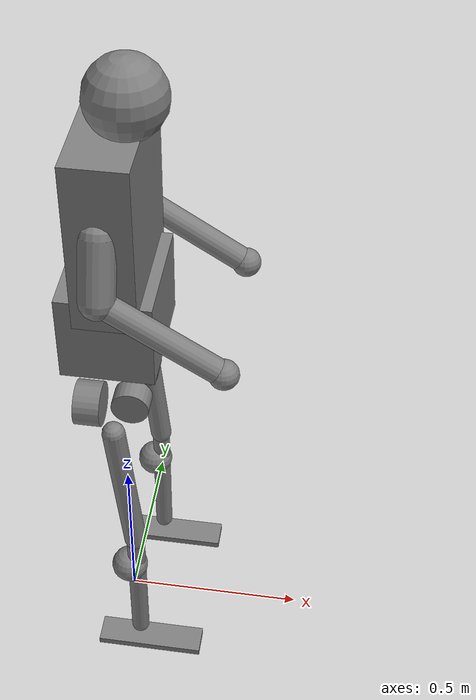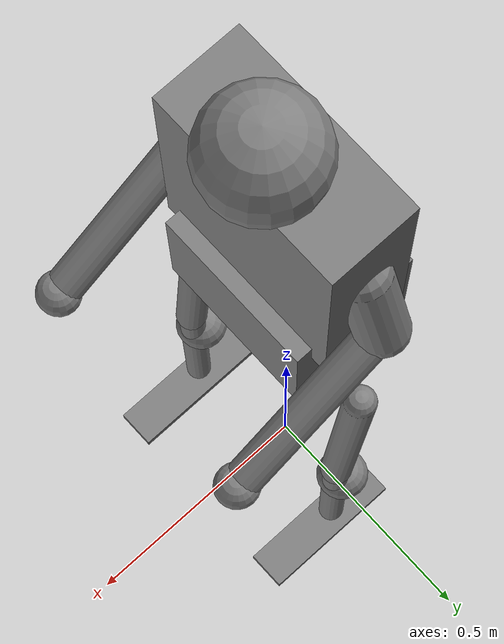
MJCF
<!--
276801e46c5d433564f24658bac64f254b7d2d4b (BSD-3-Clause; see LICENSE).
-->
<mujoco model="unitree_rl_gym_h1">
  <compiler angle="radian" autolimits="true"/>
  <default>
    <default class="h1">
      <joint damping="0.001" armature="0.01"/>
      <geom friction="1 0.005 0.0001"/>
    </default>
  </default>

  <worldbody>
    <body name="pelvis" pos="0 0 1.05" childclass="h1">
      <inertial pos="0.0097494 0.00167425 0.174644"
                quat="0.999936 -0.00259707 -0.0109997 -0.0000779805"
                mass="29.847" diaginertia="1.32807 0.960733 0.53795"/>
      <geom type="box" size=".12 .15 .12" pos="0 0 .10"/>
      <geom type="box" size=".08 .18 .23" pos=".01 0 .40"/>
      <geom type="sphere" size=".10" pos=".05 0 .70"/>
      <geom type="capsule" size=".045"
            fromto=".005 .16 .44 .005 .21 .29"/>
      <geom type="capsule" size=".032"
            fromto=".005 .21 .29 .30 .21 .10"/>
      <geom type="sphere" size=".038" pos=".30 .21 .10"/>
      <geom type="capsule" size=".045"
            fromto=".005 -.16 .44 .005 -.21 .29"/>
      <geom type="capsule" size=".032"
            fromto=".005 -.21 .29 .30 -.21 .10"/>
      <geom type="sphere" size=".038" pos=".30 -.21 .10"/>

      <body name="left_hip_yaw_link" pos="0 .0875 -.1742">
        <inertial pos="-.04923 .0001 .0072"
                  quat=".69699 .219193 .233287 .641667"
                  mass="2.244" diaginertia=".00304494 .00296885 .00189201"/>
        <joint name="left_hip_yaw" axis="0 0 1" range="-.43 .43"/>
        <geom type="cylinder" size=".06 .035" pos="-.067 0 0"
              quat=".707123 0 .70709 0"/>
        <body name="left_hip_roll_link" pos=".039468 0 0">
          <inertial pos="-.0058 -.00319 -.00009"
                    quat=".0438242 .70721 -.0729075 .701867"
                    mass="2.232" diaginertia=".00243264 .00225325 .00205492"/>
          <joint name="left_hip_roll" axis="1 0 0" range="-.43 .43"/>
          <geom type="cylinder" size=".05 .03" pos="0 -.02 0"
                quat=".707107 .707107 0 0"/>
          <body name="left_hip_pitch_link" pos="0 .11536 0">
            <inertial pos=".00746 -.02346 -.08193"
                      quat=".979828 .0513522 -.0169854 -.192382"
                      mass="4.152" diaginertia=".0829503 .0821457 .00510909"/>
            <joint name="left_hip_pitch" axis="0 1 0" range="-1.57 1.57"/>
            <geom type="capsule" size=".03" fromto=".02 0 -.4 -.02 0 .02"/>
            <body name="left_knee_link" pos="0 0 -.4">
              <inertial pos="-.00136 -.00512 -.1384"
                        quat=".626132 -.034227 -.0416277 .777852"
                        mass="1.721" diaginertia=".0125237 .0123104 .0019428"/>
              <joint name="left_knee" axis="0 1 0" range="-.26 2.05"/>
              <geom type="capsule" size=".025" fromto=".02 0 -.4 .02 0 0"/>
              <geom type="sphere" size=".05" pos="0 0 -.115"/>
              <body name="left_ankle_link" pos="0 0 -.4">
                <inertial pos=".048568 0 -.045609"
                          quat=".489385 .510394 .510394 .489385"
                          mass=".552448"
                          diaginertia=".00362 .00355701 .000149987"/>
                <joint name="left_ankle" axis="0 1 0" range="-.87 .52"/>
                <!-- Contact support bounds of MuJoCo's convexified source
                     ankle STL: x [-.10,.20], y [-.04,.04], z floor -.07. -->
                <geom type="box" size=".15 .04 .01" pos=".05 0 -.06"/>
              </body>
            </body>
          </body>
        </body>
      </body>

      <body name="right_hip_yaw_link" pos="0 -.0875 -.1742">
        <inertial pos="-.04923 -.0001 .0072"
                  quat=".641667 .233287 .219193 .69699"
                  mass="2.244" diaginertia=".00304494 .00296885 .00189201"/>
        <joint name="right_hip_yaw" axis="0 0 1" range="-.43 .43"/>
        <geom type="cylinder" size=".06 .035" pos="-.067 0 0"
              quat=".707123 0 .70709 0"/>
        <body name="right_hip_roll_link" pos=".039468 0 0">
          <inertial pos="-.0058 .00319 -.00009"
                    quat="-.0438242 .70721 .0729075 .701867"
                    mass="2.232" diaginertia=".00243264 .00225325 .00205492"/>
          <joint name="right_hip_roll" axis="1 0 0" range="-.43 .43"/>
          <geom type="cylinder" size=".05 .03" pos="0 .02 0"
                quat=".707107 .707107 0 0"/>
          <body name="right_hip_pitch_link" pos="0 -.11536 0">
            <inertial pos=".00746 .02346 -.08193"
                      quat=".979828 -.0513522 -.0169854 .192382"
                      mass="4.152" diaginertia=".0829503 .0821457 .00510909"/>
            <joint name="right_hip_pitch" axis="0 1 0" range="-1.57 1.57"/>
            <geom type="capsule" size=".03" fromto=".02 0 -.4 -.02 0 .02"/>
            <body name="right_knee_link" pos="0 0 -.4">
              <inertial pos="-.00136 .00512 -.1384"
                        quat=".777852 -.0416277 -.034227 .626132"
                        mass="1.721" diaginertia=".0125237 .0123104 .0019428"/>
              <joint name="right_knee" axis="0 1 0" range="-.26 2.05"/>
              <geom type="capsule" size=".025" fromto=".02 0 -.4 .02 0 0"/>
              <geom type="sphere" size=".05" pos="0 0 -.115"/>
              <body name="right_ankle_link" pos="0 0 -.4">
                <inertial pos=".048568 0 -.045609"
                          quat=".489385 .510394 .510394 .489385"
                          mass=".552448"
                          diaginertia=".00362 .00355701 .000149987"/>
                <joint name="right_ankle" axis="0 1 0" range="-.87 .52"/>
                <geom type="box" size=".15 .04 .01" pos=".05 0 -.06"/>
              </body>
            </body>
          </body>
        </body>
      </body>
    </body>
  </worldbody>

  <actuator>
    <motor name="left_hip_yaw" joint="left_hip_yaw" ctrlrange="-200 200"/>
    <motor name="left_hip_roll" joint="left_hip_roll" ctrlrange="-200 200"/>
    <motor name="left_hip_pitch" joint="left_hip_pitch" ctrlrange="-200 200"/>
    <motor name="left_knee" joint="left_knee" ctrlrange="-300 300"/>
    <motor name="left_ankle" joint="left_ankle" ctrlrange="-40 40"/>
    <motor name="right_hip_yaw" joint="right_hip_yaw" ctrlrange="-200 200"/>
    <motor name="right_hip_roll" joint="right_hip_roll" ctrlrange="-200 200"/>
    <motor name="right_hip_pitch" joint="right_hip_pitch" ctrlrange="-200 200"/>
    <motor name="right_knee" joint="right_knee" ctrlrange="-300 300"/>
    <motor name="right_ankle" joint="right_ankle" ctrlrange="-40 40"/>
  </actuator>
</mujoco>
